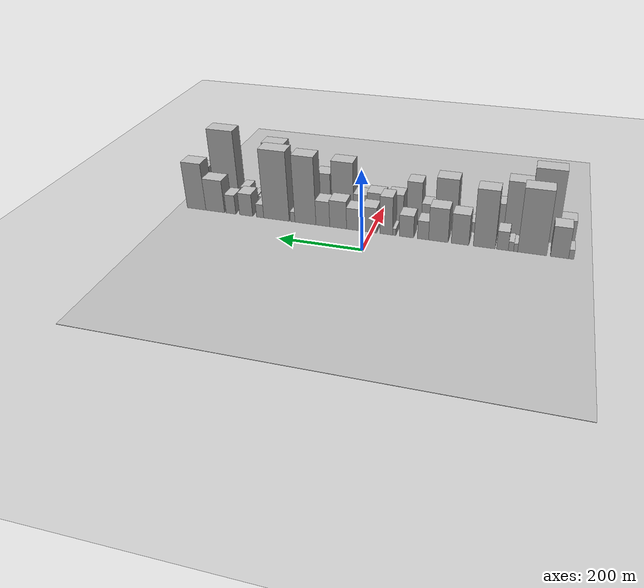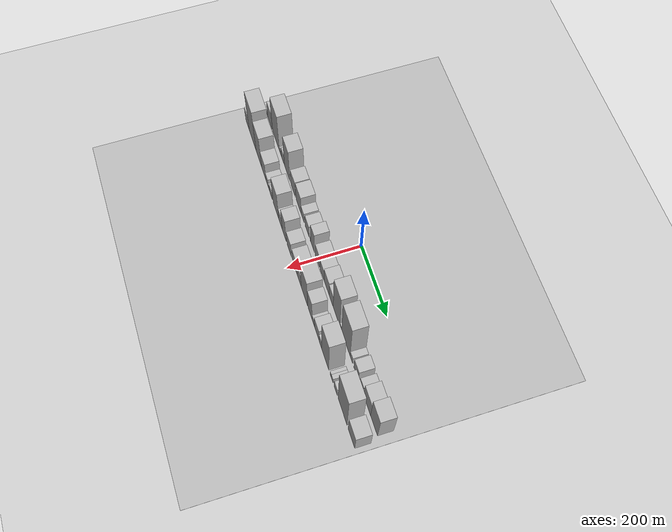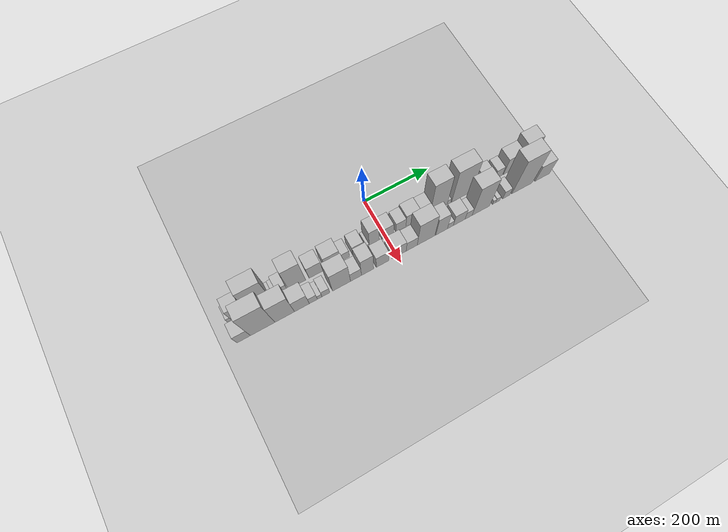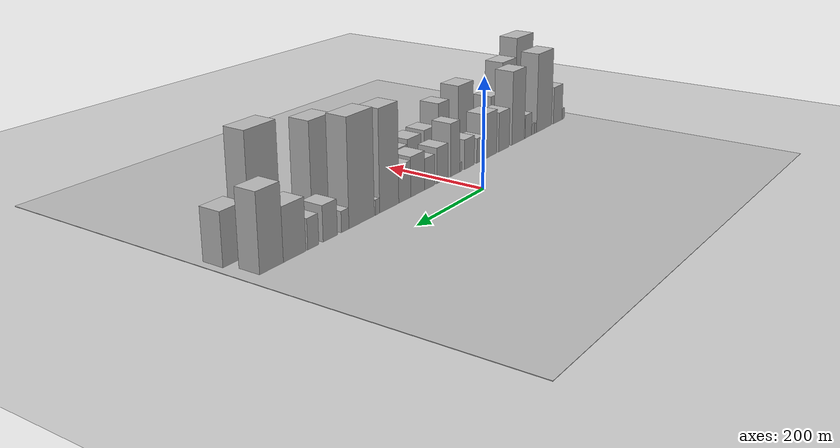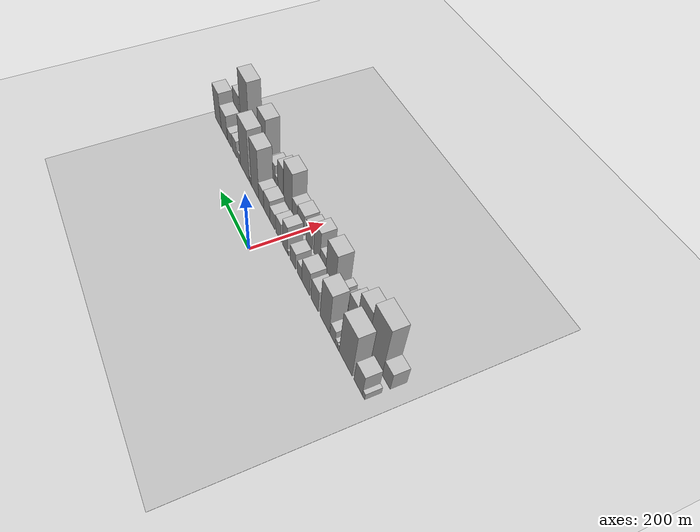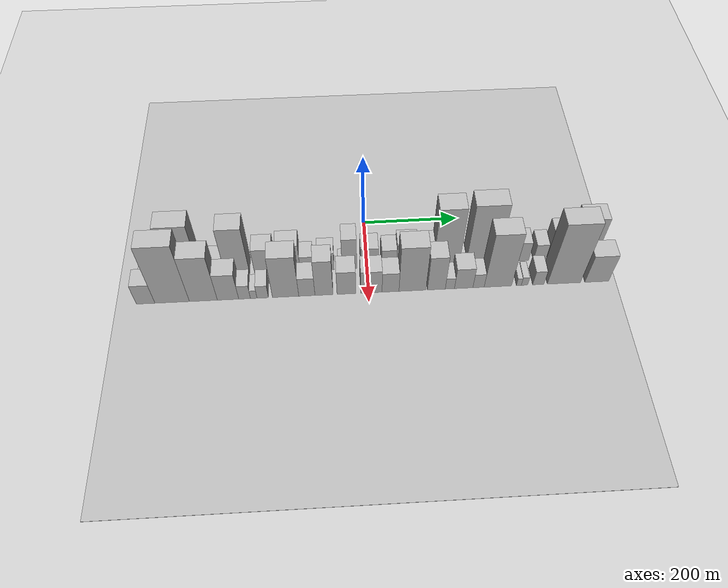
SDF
<sdf version="1.6">
 <world name="default">
  <include><name>ground_plane_1</name><uri>model://HANNAS_ground_plane</uri></include>
  <include>
   <name>ground_plane_2</name>
   <uri>model://HANNAS_ground_plane</uri>
   <pose>100 0 0  0 0 0</pose>
  </include>
  <model name="building_1">
   <static>1</static>
   <pose>100.0000 -454.4132 0 0.000000 0.000000 0.000000</pose>
   <link name="link">
    <pose>0 0 12.00 0 0 0</pose>
    <collision name="collision"><geometry><box><size>40.0000 11.1735 24.0000</size></box></geometry></collision>
    <visual name="visual">
     <cast_shadows>0</cast_shadows>
     <geometry><box><size>40.0000 11.1735 24.0000</size></box></geometry>
     <material>
      <script>
       <uri>model://HANNAS_wall/materials/scripts</uri>
       <uri>model://HANNAS_wall/materials/textures</uri>
       <name>vrc/HANNAS_wall</name>
      </script>
     </material>
    </visual>
   </link>
  </model>
  <model name="building_2">
   <static>1</static>
   <pose>100.0000 -429.2784 0 0.000000 0.000000 0.000000</pose>
   <link name="link">
    <pose>0 0 39.00 0 0 0</pose>
    <collision name="collision"><geometry><box><size>40.0000 39.0962 78.0000</size></box></geometry></collision>
    <visual name="visual">
     <cast_shadows>0</cast_shadows>
     <geometry><box><size>40.0000 39.0962 78.0000</size></box></geometry>
     <material>
      <script>
       <uri>model://HANNAS_wall/materials/scripts</uri>
       <uri>model://HANNAS_wall/materials/textures</uri>
       <name>vrc/HANNAS_wall</name>
      </script>
     </material>
    </visual>
   </link>
  </model>
  <model name="building_3">
   <static>1</static>
   <pose>100.0000 -369.8382 0 0.000000 0.000000 0.000000</pose>
   <link name="link">
    <pose>0 0 81.00 0 0 0</pose>
    <collision name="collision"><geometry><box><size>40.0000 63.7841 162.0000</size></box></geometry></collision>
    <visual name="visual">
     <cast_shadows>0</cast_shadows>
     <geometry><box><size>40.0000 63.7841 162.0000</size></box></geometry>
     <material>
      <script>
       <uri>model://HANNAS_wall/materials/scripts</uri>
       <uri>model://HANNAS_wall/materials/textures</uri>
       <name>vrc/HANNAS_wall</name>
      </script>
     </material>
    </visual>
   </link>
  </model>
  <model name="building_4">
   <static>1</static>
   <pose>100.0000 -333.4870 0 0.000000 0.000000 0.000000</pose>
   <link name="link">
    <pose>0 0 10.50 0 0 0</pose>
    <collision name="collision"><geometry><box><size>40.0000 8.9183 21.0000</size></box></geometry></collision>
    <visual name="visual">
     <cast_shadows>0</cast_shadows>
     <geometry><box><size>40.0000 8.9183 21.0000</size></box></geometry>
     <material>
      <script>
       <uri>model://HANNAS_wall/materials/scripts</uri>
       <uri>model://HANNAS_wall/materials/textures</uri>
       <name>vrc/HANNAS_wall</name>
      </script>
     </material>
    </visual>
   </link>
  </model>
  <model name="building_5">
   <static>1</static>
   <pose>100.0000 -323.1408 0 0.000000 0.000000 0.000000</pose>
   <link name="link">
    <pose>0 0 12.00 0 0 0</pose>
    <collision name="collision"><geometry><box><size>40.0000 11.7739 24.0000</size></box></geometry></collision>
    <visual name="visual">
     <cast_shadows>0</cast_shadows>
     <geometry><box><size>40.0000 11.7739 24.0000</size></box></geometry>
     <material>
      <script>
       <uri>model://HANNAS_wall/materials/scripts</uri>
       <uri>model://HANNAS_wall/materials/textures</uri>
       <name>vrc/HANNAS_wall</name>
      </script>
     </material>
    </visual>
   </link>
  </model>
  <model name="building_6">
   <static>1</static>
   <pose>100.0000 -304.1720 0 0.000000 0.000000 0.000000</pose>
   <link name="link">
    <pose>0 0 24.00 0 0 0</pose>
    <collision name="collision"><geometry><box><size>40.0000 26.1638 48.0000</size></box></geometry></collision>
    <visual name="visual">
     <cast_shadows>0</cast_shadows>
     <geometry><box><size>40.0000 26.1638 48.0000</size></box></geometry>
     <material>
      <script>
       <uri>model://HANNAS_wall/materials/scripts</uri>
       <uri>model://HANNAS_wall/materials/textures</uri>
       <name>vrc/HANNAS_wall</name>
      </script>
     </material>
    </visual>
   </link>
  </model>
  <model name="building_7">
   <static>1</static>
   <pose>100.0000 -263.3398 0 0.000000 0.000000 0.000000</pose>
   <link name="link">
    <pose>0 0 73.50 0 0 0</pose>
    <collision name="collision"><geometry><box><size>40.0000 49.5007 147.0000</size></box></geometry></collision>
    <visual name="visual">
     <cast_shadows>0</cast_shadows>
     <geometry><box><size>40.0000 49.5007 147.0000</size></box></geometry>
     <material>
      <script>
       <uri>model://HANNAS_wall/materials/scripts</uri>
       <uri>model://HANNAS_wall/materials/textures</uri>
       <name>vrc/HANNAS_wall</name>
      </script>
     </material>
    </visual>
   </link>
  </model>
  <model name="building_8">
   <static>1</static>
   <pose>100.0000 -208.3805 0 0.000000 0.000000 0.000000</pose>
   <link name="link">
    <pose>0 0 39.00 0 0 0</pose>
    <collision name="collision"><geometry><box><size>40.0000 40.4180 78.0000</size></box></geometry></collision>
    <visual name="visual">
     <cast_shadows>0</cast_shadows>
     <geometry><box><size>40.0000 40.4180 78.0000</size></box></geometry>
     <material>
      <script>
       <uri>model://HANNAS_wall/materials/scripts</uri>
       <uri>model://HANNAS_wall/materials/textures</uri>
       <name>vrc/HANNAS_wall</name>
      </script>
     </material>
    </visual>
   </link>
  </model>
  <model name="building_9">
   <static>1</static>
   <pose>100.0000 -158.5136 0 0.000000 0.000000 0.000000</pose>
   <link name="link">
    <pose>0 0 43.50 0 0 0</pose>
    <collision name="collision"><geometry><box><size>40.0000 45.3157 87.0000</size></box></geometry></collision>
    <visual name="visual">
     <cast_shadows>0</cast_shadows>
     <geometry><box><size>40.0000 45.3157 87.0000</size></box></geometry>
     <material>
      <script>
       <uri>model://HANNAS_wall/materials/scripts</uri>
       <uri>model://HANNAS_wall/materials/textures</uri>
       <name>vrc/HANNAS_wall</name>
      </script>
     </material>
    </visual>
   </link>
  </model>
  <model name="building_10">
   <static>1</static>
   <pose>100.0000 -122.7560 0 0.000000 0.000000 0.000000</pose>
   <link name="link">
    <pose>0 0 24.00 0 0 0</pose>
    <collision name="collision"><geometry><box><size>40.0000 26.1996 48.0000</size></box></geometry></collision>
    <visual name="visual">
     <cast_shadows>0</cast_shadows>
     <geometry><box><size>40.0000 26.1996 48.0000</size></box></geometry>
     <material>
      <script>
       <uri>model://HANNAS_wall/materials/scripts</uri>
       <uri>model://HANNAS_wall/materials/textures</uri>
       <name>vrc/HANNAS_wall</name>
      </script>
     </material>
    </visual>
   </link>
  </model>
  <model name="building_11">
   <static>1</static>
   <pose>100.0000 -83.6692 0 0.000000 0.000000 0.000000</pose>
   <link name="link">
    <pose>0 0 28.50 0 0 0</pose>
    <collision name="collision"><geometry><box><size>40.0000 33.9739 57.0000</size></box></geometry></collision>
    <visual name="visual">
     <cast_shadows>0</cast_shadows>
     <geometry><box><size>40.0000 33.9739 57.0000</size></box></geometry>
     <material>
      <script>
       <uri>model://HANNAS_wall/materials/scripts</uri>
       <uri>model://HANNAS_wall/materials/textures</uri>
       <name>vrc/HANNAS_wall</name>
      </script>
     </material>
    </visual>
   </link>
  </model>
  <model name="building_12">
   <static>1</static>
   <pose>100.0000 -54.7150 0 0.000000 0.000000 0.000000</pose>
   <link name="link">
    <pose>0 0 9.00 0 0 0</pose>
    <collision name="collision"><geometry><box><size>40.0000 7.9346 18.0000</size></box></geometry></collision>
    <visual name="visual">
     <cast_shadows>0</cast_shadows>
     <geometry><box><size>40.0000 7.9346 18.0000</size></box></geometry>
     <material>
      <script>
       <uri>model://HANNAS_wall/materials/scripts</uri>
       <uri>model://HANNAS_wall/materials/textures</uri>
       <name>vrc/HANNAS_wall</name>
      </script>
     </material>
    </visual>
   </link>
  </model>
  <model name="building_13">
   <static>1</static>
   <pose>100.0000 -35.5849 0 0.000000 0.000000 0.000000</pose>
   <link name="link">
    <pose>0 0 49.50 0 0 0</pose>
    <collision name="collision"><geometry><box><size>40.0000 30.3256 99.0000</size></box></geometry></collision>
    <visual name="visual">
     <cast_shadows>0</cast_shadows>
     <geometry><box><size>40.0000 30.3256 99.0000</size></box></geometry>
     <material>
      <script>
       <uri>model://HANNAS_wall/materials/scripts</uri>
       <uri>model://HANNAS_wall/materials/textures</uri>
       <name>vrc/HANNAS_wall</name>
      </script>
     </material>
    </visual>
   </link>
  </model>
  <model name="building_14">
   <static>1</static>
   <pose>100.0000 5.4067 0 0.000000 0.000000 0.000000</pose>
   <link name="link">
    <pose>0 0 33.00 0 0 0</pose>
    <collision name="collision"><geometry><box><size>40.0000 35.6575 66.0000</size></box></geometry></collision>
    <visual name="visual">
     <cast_shadows>0</cast_shadows>
     <geometry><box><size>40.0000 35.6575 66.0000</size></box></geometry>
     <material>
      <script>
       <uri>model://HANNAS_wall/materials/scripts</uri>
       <uri>model://HANNAS_wall/materials/textures</uri>
       <name>vrc/HANNAS_wall</name>
      </script>
     </material>
    </visual>
   </link>
  </model>
  <model name="building_15">
   <static>1</static>
   <pose>100.0000 45.6014 0 0.000000 0.000000 0.000000</pose>
   <link name="link">
    <pose>0 0 28.50 0 0 0</pose>
    <collision name="collision"><geometry><box><size>40.0000 30.7319 57.0000</size></box></geometry></collision>
    <visual name="visual">
     <cast_shadows>0</cast_shadows>
     <geometry><box><size>40.0000 30.7319 57.0000</size></box></geometry>
     <material>
      <script>
       <uri>model://HANNAS_wall/materials/scripts</uri>
       <uri>model://HANNAS_wall/materials/textures</uri>
       <name>vrc/HANNAS_wall</name>
      </script>
     </material>
    </visual>
   </link>
  </model>
  <model name="building_16">
   <static>1</static>
   <pose>100.0000 81.7721 0 0.000000 0.000000 0.000000</pose>
   <link name="link">
    <pose>0 0 36.00 0 0 0</pose>
    <collision name="collision"><geometry><box><size>40.0000 41.6095 72.0000</size></box></geometry></collision>
    <visual name="visual">
     <cast_shadows>0</cast_shadows>
     <geometry><box><size>40.0000 41.6095 72.0000</size></box></geometry>
     <material>
      <script>
       <uri>model://HANNAS_wall/materials/scripts</uri>
       <uri>model://HANNAS_wall/materials/textures</uri>
       <name>vrc/HANNAS_wall</name>
      </script>
     </material>
    </visual>
   </link>
  </model>
  <model name="building_17">
   <static>1</static>
   <pose>100.0000 119.8060 0 0.000000 0.000000 0.000000</pose>
   <link name="link">
    <pose>0 0 33.00 0 0 0</pose>
    <collision name="collision"><geometry><box><size>40.0000 34.4583 66.0000</size></box></geometry></collision>
    <visual name="visual">
     <cast_shadows>0</cast_shadows>
     <geometry><box><size>40.0000 34.4583 66.0000</size></box></geometry>
     <material>
      <script>
       <uri>model://HANNAS_wall/materials/scripts</uri>
       <uri>model://HANNAS_wall/materials/textures</uri>
       <name>vrc/HANNAS_wall</name>
      </script>
     </material>
    </visual>
   </link>
  </model>
  <model name="building_18">
   <static>1</static>
   <pose>100.0000 163.6676 0 0.000000 0.000000 0.000000</pose>
   <link name="link">
    <pose>0 0 88.50 0 0 0</pose>
    <collision name="collision"><geometry><box><size>40.0000 53.2648 177.0000</size></box></geometry></collision>
    <visual name="visual">
     <cast_shadows>0</cast_shadows>
     <geometry><box><size>40.0000 53.2648 177.0000</size></box></geometry>
     <material>
      <script>
       <uri>model://HANNAS_wall/materials/scripts</uri>
       <uri>model://HANNAS_wall/materials/textures</uri>
       <name>vrc/HANNAS_wall</name>
      </script>
     </material>
    </visual>
   </link>
  </model>
  <model name="building_19">
   <static>1</static>
   <pose>100.0000 195.9269 0 0.000000 0.000000 0.000000</pose>
   <link name="link">
    <pose>0 0 13.50 0 0 0</pose>
    <collision name="collision"><geometry><box><size>40.0000 11.2537 27.0000</size></box></geometry></collision>
    <visual name="visual">
     <cast_shadows>0</cast_shadows>
     <geometry><box><size>40.0000 11.2537 27.0000</size></box></geometry>
     <material>
      <script>
       <uri>model://HANNAS_wall/materials/scripts</uri>
       <uri>model://HANNAS_wall/materials/textures</uri>
       <name>vrc/HANNAS_wall</name>
      </script>
     </material>
    </visual>
   </link>
  </model>
  <model name="building_20">
   <static>1</static>
   <pose>100.0000 237.5561 0 0.000000 0.000000 0.000000</pose>
   <link name="link">
    <pose>0 0 91.50 0 0 0</pose>
    <collision name="collision"><geometry><box><size>40.0000 66.0048 183.0000</size></box></geometry></collision>
    <visual name="visual">
     <cast_shadows>0</cast_shadows>
     <geometry><box><size>40.0000 66.0048 183.0000</size></box></geometry>
     <material>
      <script>
       <uri>model://HANNAS_wall/materials/scripts</uri>
       <uri>model://HANNAS_wall/materials/textures</uri>
       <name>vrc/HANNAS_wall</name>
      </script>
     </material>
    </visual>
   </link>
  </model>
  <model name="building_21">
   <static>1</static>
   <pose>100.0000 279.9071 0 0.000000 0.000000 0.000000</pose>
   <link name="link">
    <pose>0 0 18.00 0 0 0</pose>
    <collision name="collision"><geometry><box><size>40.0000 18.6972 36.0000</size></box></geometry></collision>
    <visual name="visual">
     <cast_shadows>0</cast_shadows>
     <geometry><box><size>40.0000 18.6972 36.0000</size></box></geometry>
     <material>
      <script>
       <uri>model://HANNAS_wall/materials/scripts</uri>
       <uri>model://HANNAS_wall/materials/textures</uri>
       <name>vrc/HANNAS_wall</name>
      </script>
     </material>
    </visual>
   </link>
  </model>
  <model name="building_22">
   <static>1</static>
   <pose>100.0000 316.5008 0 0.000000 0.000000 0.000000</pose>
   <link name="link">
    <pose>0 0 30.00 0 0 0</pose>
    <collision name="collision"><geometry><box><size>40.0000 34.4902 60.0000</size></box></geometry></collision>
    <visual name="visual">
     <cast_shadows>0</cast_shadows>
     <geometry><box><size>40.0000 34.4902 60.0000</size></box></geometry>
     <material>
      <script>
       <uri>model://HANNAS_wall/materials/scripts</uri>
       <uri>model://HANNAS_wall/materials/textures</uri>
       <name>vrc/HANNAS_wall</name>
      </script>
     </material>
    </visual>
   </link>
  </model>
  <model name="building_23">
   <static>1</static>
   <pose>100.0000 356.6999 0 0.000000 0.000000 0.000000</pose>
   <link name="link">
    <pose>0 0 25.50 0 0 0</pose>
    <collision name="collision"><geometry><box><size>40.0000 25.9079 51.0000</size></box></geometry></collision>
    <visual name="visual">
     <cast_shadows>0</cast_shadows>
     <geometry><box><size>40.0000 25.9079 51.0000</size></box></geometry>
     <material>
      <script>
       <uri>model://HANNAS_wall/materials/scripts</uri>
       <uri>model://HANNAS_wall/materials/textures</uri>
       <name>vrc/HANNAS_wall</name>
      </script>
     </material>
    </visual>
   </link>
  </model>
  <model name="building_24">
   <static>1</static>
   <pose>100.0000 398.7764 0 0.000000 0.000000 0.000000</pose>
   <link name="link">
    <pose>0 0 43.50 0 0 0</pose>
    <collision name="collision"><geometry><box><size>40.0000 50.2450 87.0000</size></box></geometry></collision>
    <visual name="visual">
     <cast_shadows>0</cast_shadows>
     <geometry><box><size>40.0000 50.2450 87.0000</size></box></geometry>
     <material>
      <script>
       <uri>model://HANNAS_wall/materials/scripts</uri>
       <uri>model://HANNAS_wall/materials/textures</uri>
       <name>vrc/HANNAS_wall</name>
      </script>
     </material>
    </visual>
   </link>
  </model>
  <model name="building_25">
   <static>1</static>
   <pose>100.0000 449.0727 0 0.000000 0.000000 0.000000</pose>
   <link name="link">
    <pose>0 0 63.00 0 0 0</pose>
    <collision name="collision"><geometry><box><size>40.0000 50.3476 126.0000</size></box></geometry></collision>
    <visual name="visual">
     <cast_shadows>0</cast_shadows>
     <geometry><box><size>40.0000 50.3476 126.0000</size></box></geometry>
     <material>
      <script>
       <uri>model://HANNAS_wall/materials/scripts</uri>
       <uri>model://HANNAS_wall/materials/textures</uri>
       <name>vrc/HANNAS_wall</name>
      </script>
     </material>
    </visual>
   </link>
  </model>
  <model name="building_26">
   <static>1</static>
   <pose>160.0000 -441.8215 0 0.000000 0.000000 0.000000</pose>
   <link name="link">
    <pose>0 0 31.50 0 0 0</pose>
    <collision name="collision"><geometry><box><size>40.0000 36.3571 63.0000</size></box></geometry></collision>
    <visual name="visual">
     <cast_shadows>0</cast_shadows>
     <geometry><box><size>40.0000 36.3571 63.0000</size></box></geometry>
     <material>
      <script>
       <uri>model://HANNAS_wall/materials/scripts</uri>
       <uri>model://HANNAS_wall/materials/textures</uri>
       <name>vrc/HANNAS_wall</name>
      </script>
     </material>
    </visual>
   </link>
  </model>
  <model name="building_27">
   <static>1</static>
   <pose>160.0000 -389.6757 0 0.000000 0.000000 0.000000</pose>
   <link name="link">
    <pose>0 0 91.50 0 0 0</pose>
    <collision name="collision"><geometry><box><size>40.0000 67.9344 183.0000</size></box></geometry></collision>
    <visual name="visual">
     <cast_shadows>0</cast_shadows>
     <geometry><box><size>40.0000 67.9344 183.0000</size></box></geometry>
     <material>
      <script>
       <uri>model://HANNAS_wall/materials/scripts</uri>
       <uri>model://HANNAS_wall/materials/textures</uri>
       <name>vrc/HANNAS_wall</name>
      </script>
     </material>
    </visual>
   </link>
  </model>
  <model name="building_28">
   <static>1</static>
   <pose>160.0000 -328.1192 0 0.000000 0.000000 0.000000</pose>
   <link name="link">
    <pose>0 0 72.00 0 0 0</pose>
    <collision name="collision"><geometry><box><size>40.0000 55.1787 144.0000</size></box></geometry></collision>
    <visual name="visual">
     <cast_shadows>0</cast_shadows>
     <geometry><box><size>40.0000 55.1787 144.0000</size></box></geometry>
     <material>
      <script>
       <uri>model://HANNAS_wall/materials/scripts</uri>
       <uri>model://HANNAS_wall/materials/textures</uri>
       <name>vrc/HANNAS_wall</name>
      </script>
     </material>
    </visual>
   </link>
  </model>
  <model name="building_29">
   <static>1</static>
   <pose>160.0000 -279.4673 0 0.000000 0.000000 0.000000</pose>
   <link name="link">
    <pose>0 0 42.00 0 0 0</pose>
    <collision name="collision"><geometry><box><size>40.0000 42.1251 84.0000</size></box></geometry></collision>
    <visual name="visual">
     <cast_shadows>0</cast_shadows>
     <geometry><box><size>40.0000 42.1251 84.0000</size></box></geometry>
     <material>
      <script>
       <uri>model://HANNAS_wall/materials/scripts</uri>
       <uri>model://HANNAS_wall/materials/textures</uri>
       <name>vrc/HANNAS_wall</name>
      </script>
     </material>
    </visual>
   </link>
  </model>
  <model name="building_30">
   <static>1</static>
   <pose>160.0000 -246.8104 0 0.000000 0.000000 0.000000</pose>
   <link name="link">
    <pose>0 0 22.50 0 0 0</pose>
    <collision name="collision"><geometry><box><size>40.0000 23.1887 45.0000</size></box></geometry></collision>
    <visual name="visual">
     <cast_shadows>0</cast_shadows>
     <geometry><box><size>40.0000 23.1887 45.0000</size></box></geometry>
     <material>
      <script>
       <uri>model://HANNAS_wall/materials/scripts</uri>
       <uri>model://HANNAS_wall/materials/textures</uri>
       <name>vrc/HANNAS_wall</name>
      </script>
     </material>
    </visual>
   </link>
  </model>
  <model name="building_31">
   <static>1</static>
   <pose>160.0000 -228.7087 0 0.000000 0.000000 0.000000</pose>
   <link name="link">
    <pose>0 0 13.50 0 0 0</pose>
    <collision name="collision"><geometry><box><size>40.0000 13.0147 27.0000</size></box></geometry></collision>
    <visual name="visual">
     <cast_shadows>0</cast_shadows>
     <geometry><box><size>40.0000 13.0147 27.0000</size></box></geometry>
     <material>
      <script>
       <uri>model://HANNAS_wall/materials/scripts</uri>
       <uri>model://HANNAS_wall/materials/textures</uri>
       <name>vrc/HANNAS_wall</name>
      </script>
     </material>
    </visual>
   </link>
  </model>
  <model name="building_32">
   <static>1</static>
   <pose>160.0000 -210.9056 0 0.000000 0.000000 0.000000</pose>
   <link name="link">
    <pose>0 0 21.00 0 0 0</pose>
    <collision name="collision"><geometry><box><size>40.0000 22.5916 42.0000</size></box></geometry></collision>
    <visual name="visual">
     <cast_shadows>0</cast_shadows>
     <geometry><box><size>40.0000 22.5916 42.0000</size></box></geometry>
     <material>
      <script>
       <uri>model://HANNAS_wall/materials/scripts</uri>
       <uri>model://HANNAS_wall/materials/textures</uri>
       <name>vrc/HANNAS_wall</name>
      </script>
     </material>
    </visual>
   </link>
  </model>
  <model name="building_33">
   <static>1</static>
   <pose>160.0000 -165.4572 0 0.000000 0.000000 0.000000</pose>
   <link name="link">
    <pose>0 0 66.00 0 0 0</pose>
    <collision name="collision"><geometry><box><size>40.0000 52.3052 132.0000</size></box></geometry></collision>
    <visual name="visual">
     <cast_shadows>0</cast_shadows>
     <geometry><box><size>40.0000 52.3052 132.0000</size></box></geometry>
     <material>
      <script>
       <uri>model://HANNAS_wall/materials/scripts</uri>
       <uri>model://HANNAS_wall/materials/textures</uri>
       <name>vrc/HANNAS_wall</name>
      </script>
     </material>
    </visual>
   </link>
  </model>
  <model name="building_34">
   <static>1</static>
   <pose>160.0000 -123.1855 0 0.000000 0.000000 0.000000</pose>
   <link name="link">
    <pose>0 0 30.00 0 0 0</pose>
    <collision name="collision"><geometry><box><size>40.0000 32.2381 60.0000</size></box></geometry></collision>
    <visual name="visual">
     <cast_shadows>0</cast_shadows>
     <geometry><box><size>40.0000 32.2381 60.0000</size></box></geometry>
     <material>
      <script>
       <uri>model://HANNAS_wall/materials/scripts</uri>
       <uri>model://HANNAS_wall/materials/textures</uri>
       <name>vrc/HANNAS_wall</name>
      </script>
     </material>
    </visual>
   </link>
  </model>
  <model name="building_35">
   <static>1</static>
   <pose>160.0000 -89.0477 0 0.000000 0.000000 0.000000</pose>
   <link name="link">
    <pose>0 0 57.00 0 0 0</pose>
    <collision name="collision"><geometry><box><size>40.0000 36.0375 114.0000</size></box></geometry></collision>
    <visual name="visual">
     <cast_shadows>0</cast_shadows>
     <geometry><box><size>40.0000 36.0375 114.0000</size></box></geometry>
     <material>
      <script>
       <uri>model://HANNAS_wall/materials/scripts</uri>
       <uri>model://HANNAS_wall/materials/textures</uri>
       <name>vrc/HANNAS_wall</name>
      </script>
     </material>
    </visual>
   </link>
  </model>
  <model name="building_36">
   <static>1</static>
   <pose>160.0000 -44.1867 0 0.000000 0.000000 0.000000</pose>
   <link name="link">
    <pose>0 0 37.50 0 0 0</pose>
    <collision name="collision"><geometry><box><size>40.0000 37.6845 75.0000</size></box></geometry></collision>
    <visual name="visual">
     <cast_shadows>0</cast_shadows>
     <geometry><box><size>40.0000 37.6845 75.0000</size></box></geometry>
     <material>
      <script>
       <uri>model://HANNAS_wall/materials/scripts</uri>
       <uri>model://HANNAS_wall/materials/textures</uri>
       <name>vrc/HANNAS_wall</name>
      </script>
     </material>
    </visual>
   </link>
  </model>
  <model name="building_37">
   <static>1</static>
   <pose>160.0000 5.7703 0 0.000000 0.000000 0.000000</pose>
   <link name="link">
    <pose>0 0 36.00 0 0 0</pose>
    <collision name="collision"><geometry><box><size>40.0000 42.2296 72.0000</size></box></geometry></collision>
    <visual name="visual">
     <cast_shadows>0</cast_shadows>
     <geometry><box><size>40.0000 42.2296 72.0000</size></box></geometry>
     <material>
      <script>
       <uri>model://HANNAS_wall/materials/scripts</uri>
       <uri>model://HANNAS_wall/materials/textures</uri>
       <name>vrc/HANNAS_wall</name>
      </script>
     </material>
    </visual>
   </link>
  </model>
  <model name="building_38">
   <static>1</static>
   <pose>160.0000 43.8704 0 0.000000 0.000000 0.000000</pose>
   <link name="link">
    <pose>0 0 31.50 0 0 0</pose>
    <collision name="collision"><geometry><box><size>40.0000 33.9706 63.0000</size></box></geometry></collision>
    <visual name="visual">
     <cast_shadows>0</cast_shadows>
     <geometry><box><size>40.0000 33.9706 63.0000</size></box></geometry>
     <material>
      <script>
       <uri>model://HANNAS_wall/materials/scripts</uri>
       <uri>model://HANNAS_wall/materials/textures</uri>
       <name>vrc/HANNAS_wall</name>
      </script>
     </material>
    </visual>
   </link>
  </model>
  <model name="building_39">
   <static>1</static>
   <pose>160.0000 87.9832 0 0.000000 0.000000 0.000000</pose>
   <link name="link">
    <pose>0 0 72.00 0 0 0</pose>
    <collision name="collision"><geometry><box><size>40.0000 54.2552 144.0000</size></box></geometry></collision>
    <visual name="visual">
     <cast_shadows>0</cast_shadows>
     <geometry><box><size>40.0000 54.2552 144.0000</size></box></geometry>
     <material>
      <script>
       <uri>model://HANNAS_wall/materials/scripts</uri>
       <uri>model://HANNAS_wall/materials/textures</uri>
       <name>vrc/HANNAS_wall</name>
      </script>
     </material>
    </visual>
   </link>
  </model>
  <model name="building_40">
   <static>1</static>
   <pose>160.0000 136.0888 0 0.000000 0.000000 0.000000</pose>
   <link name="link">
    <pose>0 0 54.00 0 0 0</pose>
    <collision name="collision"><geometry><box><size>40.0000 35.9559 108.0000</size></box></geometry></collision>
    <visual name="visual">
     <cast_shadows>0</cast_shadows>
     <geometry><box><size>40.0000 35.9559 108.0000</size></box></geometry>
     <material>
      <script>
       <uri>model://HANNAS_wall/materials/scripts</uri>
       <uri>model://HANNAS_wall/materials/textures</uri>
       <name>vrc/HANNAS_wall</name>
      </script>
     </material>
    </visual>
   </link>
  </model>
  <model name="building_41">
   <static>1</static>
   <pose>160.0000 163.3378 0 0.000000 0.000000 0.000000</pose>
   <link name="link">
    <pose>0 0 18.00 0 0 0</pose>
    <collision name="collision"><geometry><box><size>40.0000 18.5420 36.0000</size></box></geometry></collision>
    <visual name="visual">
     <cast_shadows>0</cast_shadows>
     <geometry><box><size>40.0000 18.5420 36.0000</size></box></geometry>
     <material>
      <script>
       <uri>model://HANNAS_wall/materials/scripts</uri>
       <uri>model://HANNAS_wall/materials/textures</uri>
       <name>vrc/HANNAS_wall</name>
      </script>
     </material>
    </visual>
   </link>
  </model>
  <model name="building_42">
   <static>1</static>
   <pose>160.0000 191.2051 0 0.000000 0.000000 0.000000</pose>
   <link name="link">
    <pose>0 0 33.00 0 0 0</pose>
    <collision name="collision"><geometry><box><size>40.0000 37.1927 66.0000</size></box></geometry></collision>
    <visual name="visual">
     <cast_shadows>0</cast_shadows>
     <geometry><box><size>40.0000 37.1927 66.0000</size></box></geometry>
     <material>
      <script>
       <uri>model://HANNAS_wall/materials/scripts</uri>
       <uri>model://HANNAS_wall/materials/textures</uri>
       <name>vrc/HANNAS_wall</name>
      </script>
     </material>
    </visual>
   </link>
  </model>
  <model name="building_43">
   <static>1</static>
   <pose>160.0000 221.1415 0 0.000000 0.000000 0.000000</pose>
   <link name="link">
    <pose>0 0 22.50 0 0 0</pose>
    <collision name="collision"><geometry><box><size>40.0000 22.6800 45.0000</size></box></geometry></collision>
    <visual name="visual">
     <cast_shadows>0</cast_shadows>
     <geometry><box><size>40.0000 22.6800 45.0000</size></box></geometry>
     <material>
      <script>
       <uri>model://HANNAS_wall/materials/scripts</uri>
       <uri>model://HANNAS_wall/materials/textures</uri>
       <name>vrc/HANNAS_wall</name>
      </script>
     </material>
    </visual>
   </link>
  </model>
  <model name="building_44">
   <static>1</static>
   <pose>160.0000 260.2551 0 0.000000 0.000000 0.000000</pose>
   <link name="link">
    <pose>0 0 85.50 0 0 0</pose>
    <collision name="collision"><geometry><box><size>40.0000 55.5472 171.0000</size></box></geometry></collision>
    <visual name="visual">
     <cast_shadows>0</cast_shadows>
     <geometry><box><size>40.0000 55.5472 171.0000</size></box></geometry>
     <material>
      <script>
       <uri>model://HANNAS_wall/materials/scripts</uri>
       <uri>model://HANNAS_wall/materials/textures</uri>
       <name>vrc/HANNAS_wall</name>
      </script>
     </material>
    </visual>
   </link>
  </model>
  <model name="building_45">
   <static>1</static>
   <pose>160.0000 302.9893 0 0.000000 0.000000 0.000000</pose>
   <link name="link">
    <pose>0 0 12.00 0 0 0</pose>
    <collision name="collision"><geometry><box><size>40.0000 9.9212 24.0000</size></box></geometry></collision>
    <visual name="visual">
     <cast_shadows>0</cast_shadows>
     <geometry><box><size>40.0000 9.9212 24.0000</size></box></geometry>
     <material>
      <script>
       <uri>model://HANNAS_wall/materials/scripts</uri>
       <uri>model://HANNAS_wall/materials/textures</uri>
       <name>vrc/HANNAS_wall</name>
      </script>
     </material>
    </visual>
   </link>
  </model>
  <model name="building_46">
   <static>1</static>
   <pose>160.0000 314.4521 0 0.000000 0.000000 0.000000</pose>
   <link name="link">
    <pose>0 0 13.50 0 0 0</pose>
    <collision name="collision"><geometry><box><size>40.0000 13.0045 27.0000</size></box></geometry></collision>
    <visual name="visual">
     <cast_shadows>0</cast_shadows>
     <geometry><box><size>40.0000 13.0045 27.0000</size></box></geometry>
     <material>
      <script>
       <uri>model://HANNAS_wall/materials/scripts</uri>
       <uri>model://HANNAS_wall/materials/textures</uri>
       <name>vrc/HANNAS_wall</name>
      </script>
     </material>
    </visual>
   </link>
  </model>
  <model name="building_47">
   <static>1</static>
   <pose>160.0000 342.4204 0 0.000000 0.000000 0.000000</pose>
   <link name="link">
    <pose>0 0 22.50 0 0 0</pose>
    <collision name="collision"><geometry><box><size>40.0000 22.9321 45.0000</size></box></geometry></collision>
    <visual name="visual">
     <cast_shadows>0</cast_shadows>
     <geometry><box><size>40.0000 22.9321 45.0000</size></box></geometry>
     <material>
      <script>
       <uri>model://HANNAS_wall/materials/scripts</uri>
       <uri>model://HANNAS_wall/materials/textures</uri>
       <name>vrc/HANNAS_wall</name>
      </script>
     </material>
    </visual>
   </link>
  </model>
  <model name="building_48">
   <static>1</static>
   <pose>160.0000 394.6511 0 0.000000 0.000000 0.000000</pose>
   <link name="link">
    <pose>0 0 96.00 0 0 0</pose>
    <collision name="collision"><geometry><box><size>40.0000 67.5291 192.0000</size></box></geometry></collision>
    <visual name="visual">
     <cast_shadows>0</cast_shadows>
     <geometry><box><size>40.0000 67.5291 192.0000</size></box></geometry>
     <material>
      <script>
       <uri>model://HANNAS_wall/materials/scripts</uri>
       <uri>model://HANNAS_wall/materials/textures</uri>
       <name>vrc/HANNAS_wall</name>
      </script>
     </material>
    </visual>
   </link>
  </model>
  <model name="building_49">
   <static>1</static>
   <pose>160.0000 461.6860 0 0.000000 0.000000 0.000000</pose>
   <link name="link">
    <pose>0 0 43.50 0 0 0</pose>
    <collision name="collision"><geometry><box><size>40.0000 48.5407 87.0000</size></box></geometry></collision>
    <visual name="visual">
     <cast_shadows>0</cast_shadows>
     <geometry><box><size>40.0000 48.5407 87.0000</size></box></geometry>
     <material>
      <script>
       <uri>model://HANNAS_wall/materials/scripts</uri>
       <uri>model://HANNAS_wall/materials/textures</uri>
       <name>vrc/HANNAS_wall</name>
      </script>
     </material>
    </visual>
   </link>
  </model>
 </world>
</sdf>
